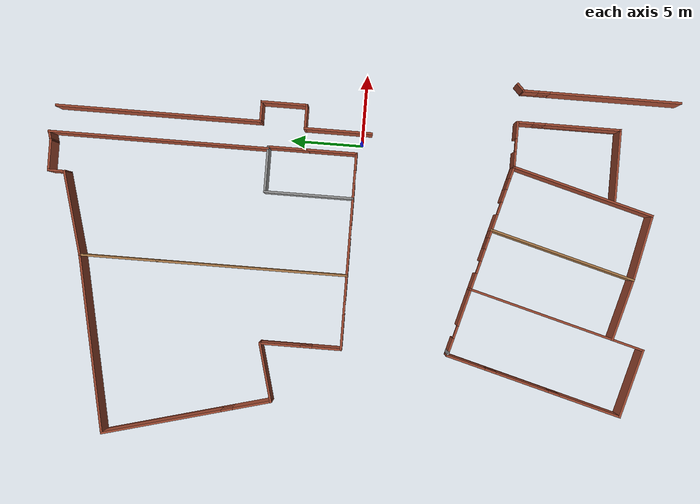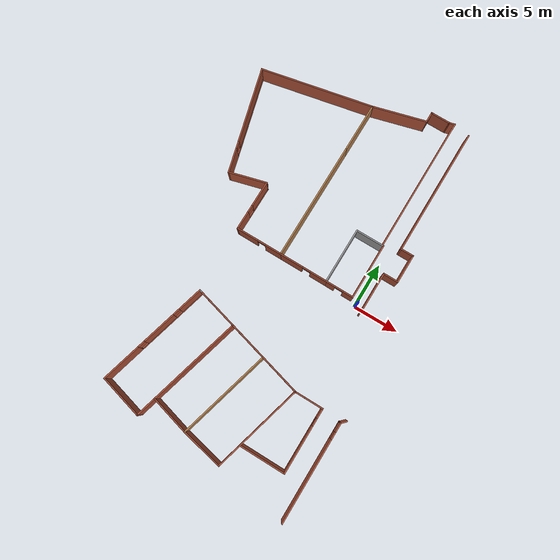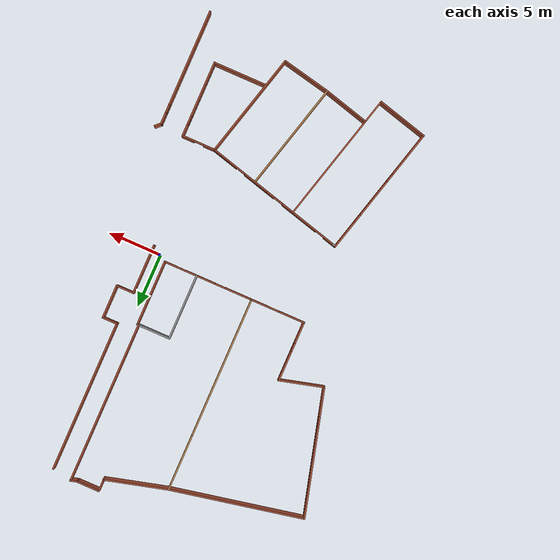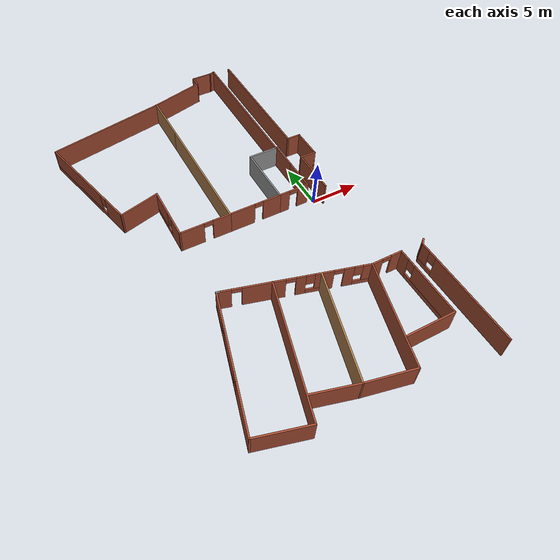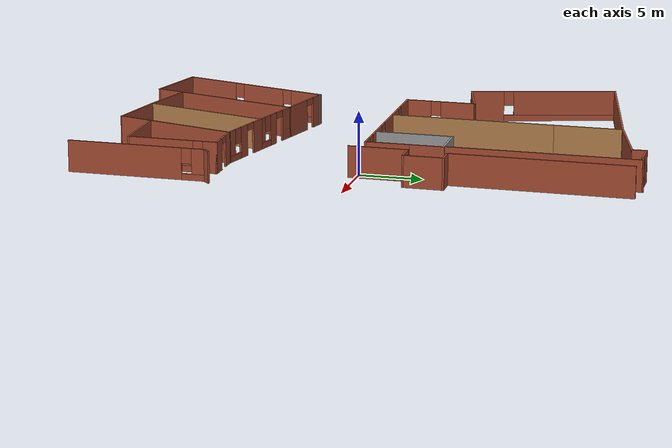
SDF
<sdf version="1.6">
 <model name="vital">
  <pose>12.2387 -3.95497 0 0 -0 0</pose>
  <link name="Wall_100">
   <collision name="Wall_100_Collision">
    <geometry><box><size>5 0.15 2.5</size></box></geometry>
    <pose>0 0 1.25 0 -0 0</pose>
   </collision>
   <visual name="Wall_100_Visual">
    <pose>0 0 1.25 0 -0 0</pose>
    <geometry><box><size>5 0.15 2.5</size></box></geometry>
    <material>
     <script><uri>file://media/materials/scripts/gazebo.material</uri><name>Gazebo/Bricks</name></script>
     <ambient>1 1 1 1</ambient>
    </material>
   </visual>
   <pose>-27.234 -15.8492 0 0 -0 2.87979</pose>
  </link>
  <link name="Wall_101">
   <pose>-27.9458 -9.13623 0 0 -0 1.309</pose>
   <visual name="Wall_101_Visual_0">
    <pose>-4.12668 0 1.25 0 -0 0</pose>
    <geometry><box><size>4.49665 0.15 2.5</size></box></geometry>
    <material>
     <script><uri>file://media/materials/scripts/gazebo.material</uri><name>Gazebo/Bricks</name></script>
     <ambient>1 1 1 1</ambient>
    </material>
   </visual>
   <collision name="Wall_101_Collision_0">
    <geometry><box><size>4.49665 0.15 2.5</size></box></geometry>
    <pose>-4.12668 0 1.25 0 -0 0</pose>
   </collision>
   <visual name="Wall_101_Visual_1">
    <pose>2.24832 0 0.25 0 -0 0</pose>
    <geometry><box><size>8.25336 0.15 0.5</size></box></geometry>
    <material>
     <script><uri>file://media/materials/scripts/gazebo.material</uri><name>Gazebo/Bricks</name></script>
     <ambient>1 1 1 1</ambient>
    </material>
   </visual>
   <collision name="Wall_101_Collision_1">
    <geometry><box><size>8.25336 0.15 0.5</size></box></geometry>
    <pose>2.24832 0 0.25 0 -0 0</pose>
   </collision>
   <visual name="Wall_101_Visual_2">
    <pose>0.830511 0 1.5 0 -0 0</pose>
    <geometry><box><size>3.81773 0.15 2</size></box></geometry>
    <material>
     <script><uri>file://media/materials/scripts/gazebo.material</uri><name>Gazebo/Bricks</name></script>
     <ambient>1 1 1 1</ambient>
    </material>
   </visual>
   <collision name="Wall_101_Collision_2">
    <geometry><box><size>3.81773 0.15 2</size></box></geometry>
    <pose>0.830511 0 1.5 0 -0 0</pose>
   </collision>
   <visual name="Wall_101_Visual_3">
    <pose>4.95719 0 1.5 0 -0 0</pose>
    <geometry><box><size>2.83562 0.15 2</size></box></geometry>
    <material>
     <script><uri>file://media/materials/scripts/gazebo.material</uri><name>Gazebo/Bricks</name></script>
     <ambient>1 1 1 1</ambient>
    </material>
   </visual>
   <collision name="Wall_101_Collision_3">
    <geometry><box><size>2.83562 0.15 2</size></box></geometry>
    <pose>4.95719 0 1.5 0 -0 0</pose>
   </collision>
   <visual name="Wall_101_Visual_4">
    <pose>-1.47836 0 1.9 0 -0 0</pose>
    <geometry><box><size>0.8 0.15 1.2</size></box></geometry>
    <material>
     <script><uri>file://media/materials/scripts/gazebo.material</uri><name>Gazebo/Bricks</name></script>
     <ambient>1 1 1 1</ambient>
    </material>
   </visual>
   <collision name="Wall_101_Collision_4">
    <geometry><box><size>0.8 0.15 1.2</size></box></geometry>
    <pose>-1.47836 0 1.9 0 -0 0</pose>
   </collision>
   <visual name="Wall_101_Visual_5">
    <pose>3.13938 0 1.9 0 -0 0</pose>
    <geometry><box><size>0.8 0.15 1.2</size></box></geometry>
    <material>
     <script><uri>file://media/materials/scripts/gazebo.material</uri><name>Gazebo/Bricks</name></script>
     <ambient>1 1 1 1</ambient>
    </material>
   </visual>
   <collision name="Wall_101_Collision_5">
    <geometry><box><size>0.8 0.15 1.2</size></box></geometry>
    <pose>3.13938 0 1.9 0 -0 0</pose>
   </collision>
  </link>
  <link name="Wall_102">
   <collision name="Wall_102_Collision">
    <geometry><box><size>0.4 0.15 2.5</size></box></geometry>
    <pose>0 0 1.25 0 -0 0</pose>
   </collision>
   <visual name="Wall_102_Visual">
    <pose>0 0 1.25 0 -0 0</pose>
    <geometry><box><size>0.4 0.15 2.5</size></box></geometry>
    <material>
     <script><uri>file://media/materials/scripts/gazebo.material</uri><name>Gazebo/Grey</name></script>
     <ambient>1 1 1 1</ambient>
    </material>
   </visual>
   <pose>-26.1945 -3.08325 0 0 0 -0.261799</pose>
  </link>
  <link name="Wall_104">
   <pose>-19.5297 -4.8691 0 0 0 -0.261799</pose>
   <visual name="Wall_104_Visual_0">
    <pose>-1.62247 0 1.25 0 -0 0</pose>
    <geometry><box><size>1.25506 0.15 2.5</size></box></geometry>
    <material>
     <script><uri>file://media/materials/scripts/gazebo.material</uri><name>Gazebo/Bricks</name></script>
     <ambient>1 1 1 1</ambient>
    </material>
   </visual>
   <collision name="Wall_104_Collision_0">
    <geometry><box><size>1.25506 0.15 2.5</size></box></geometry>
    <pose>-1.62247 0 1.25 0 -0 0</pose>
   </collision>
   <visual name="Wall_104_Visual_1">
    <pose>0.350281 0 1.25 0 -0 0</pose>
    <geometry><box><size>0.890442 0.15 2.5</size></box></geometry>
    <material>
     <script><uri>file://media/materials/scripts/gazebo.material</uri><name>Gazebo/Bricks</name></script>
     <ambient>1 1 1 1</ambient>
    </material>
   </visual>
   <collision name="Wall_104_Collision_1">
    <geometry><box><size>0.890442 0.15 2.5</size></box></geometry>
    <pose>0.350281 0 1.25 0 -0 0</pose>
   </collision>
   <visual name="Wall_104_Visual_2">
    <pose>1.52275 0 0.25 0 -0 0</pose>
    <geometry><box><size>1.4545 0.15 0.5</size></box></geometry>
    <material>
     <script><uri>file://media/materials/scripts/gazebo.material</uri><name>Gazebo/Bricks</name></script>
     <ambient>1 1 1 1</ambient>
    </material>
   </visual>
   <collision name="Wall_104_Collision_2">
    <geometry><box><size>1.4545 0.15 0.5</size></box></geometry>
    <pose>1.52275 0 0.25 0 -0 0</pose>
   </collision>
   <visual name="Wall_104_Visual_3">
    <pose>1.92275 0 1.5 0 -0 0</pose>
    <geometry><box><size>0.654498 0.15 2</size></box></geometry>
    <material>
     <script><uri>file://media/materials/scripts/gazebo.material</uri><name>Gazebo/Bricks</name></script>
     <ambient>1 1 1 1</ambient>
    </material>
   </visual>
   <collision name="Wall_104_Collision_3">
    <geometry><box><size>0.654498 0.15 2</size></box></geometry>
    <pose>1.92275 0 1.5 0 -0 0</pose>
   </collision>
   <visual name="Wall_104_Visual_4">
    <pose>1.1955 0 1.9 0 -0 0</pose>
    <geometry><box><size>0.8 0.15 1.2</size></box></geometry>
    <material>
     <script><uri>file://media/materials/scripts/gazebo.material</uri><name>Gazebo/Bricks</name></script>
     <ambient>1 1 1 1</ambient>
    </material>
   </visual>
   <collision name="Wall_104_Collision_4">
    <geometry><box><size>0.8 0.15 1.2</size></box></geometry>
    <pose>1.1955 0 1.9 0 -0 0</pose>
   </collision>
   <visual name="Wall_104_Visual_5">
    <pose>-0.54494 0 2.25 0 -0 0</pose>
    <geometry><box><size>0.9 0.15 0.5</size></box></geometry>
    <material>
     <script><uri>file://media/materials/scripts/gazebo.material</uri><name>Gazebo/Bricks</name></script>
     <ambient>1 1 1 1</ambient>
    </material>
   </visual>
   <collision name="Wall_104_Collision_5">
    <geometry><box><size>0.9 0.15 0.5</size></box></geometry>
    <pose>-0.54494 0 2.25 0 -0 0</pose>
   </collision>
  </link>
  <link name="Wall_105">
   <collision name="Wall_105_Collision">
    <geometry><box><size>10.5 0.15 2.5</size></box></geometry>
    <pose>0 0 1.25 0 -0 0</pose>
   </collision>
   <visual name="Wall_105_Visual">
    <pose>0 0 1.25 0 -0 0</pose>
    <geometry><box><size>10.5 0.15 2.5</size></box></geometry>
    <material>
     <script><uri>file://media/materials/scripts/gazebo.material</uri><name>Gazebo/Wood</name></script>
     <ambient>1 1 1 1</ambient>
    </material>
   </visual>
   <pose>-18.7682 -10.4307 0 0 0 -1.8326</pose>
  </link>
  <link name="Wall_106">
   <collision name="Wall_106_Collision">
    <geometry><box><size>4.5 0.15 2.5</size></box></geometry>
    <pose>0 0 1.25 0 -0 0</pose>
   </collision>
   <visual name="Wall_106_Visual">
    <pose>0 0 1.25 0 -0 0</pose>
    <geometry><box><size>4.5 0.15 2.5</size></box></geometry>
    <material>
     <script><uri>file://media/materials/scripts/gazebo.material</uri><name>Gazebo/Bricks</name></script>
     <ambient>1 1 1 1</ambient>
    </material>
   </visual>
   <pose>-22.2084 -14.8664 0 0 -0 2.87979</pose>
  </link>
  <link name="Wall_108">
   <pose>-15.2071 -6.02732 0 0 0 -0.261799</pose>
   <visual name="Wall_108_Visual_0">
    <pose>-1.7708 0 1.25 0 -0 0</pose>
    <geometry><box><size>1.2084 0.15 2.5</size></box></geometry>
    <material>
     <script><uri>file://media/materials/scripts/gazebo.material</uri><name>Gazebo/Bricks</name></script>
     <ambient>1 1 1 1</ambient>
    </material>
   </visual>
   <collision name="Wall_108_Collision_0">
    <geometry><box><size>1.2084 0.15 2.5</size></box></geometry>
    <pose>-1.7708 0 1.25 0 -0 0</pose>
   </collision>
   <visual name="Wall_108_Visual_1">
    <pose>0.199682 0 1.25 0 -0 0</pose>
    <geometry><box><size>0.932562 0.15 2.5</size></box></geometry>
    <material>
     <script><uri>file://media/materials/scripts/gazebo.material</uri><name>Gazebo/Bricks</name></script>
     <ambient>1 1 1 1</ambient>
    </material>
   </visual>
   <collision name="Wall_108_Collision_1">
    <geometry><box><size>0.932562 0.15 2.5</size></box></geometry>
    <pose>0.199682 0 1.25 0 -0 0</pose>
   </collision>
   <visual name="Wall_108_Visual_2">
    <pose>1.52048 0 0.25 0 -0 0</pose>
    <geometry><box><size>1.70904 0.15 0.5</size></box></geometry>
    <material>
     <script><uri>file://media/materials/scripts/gazebo.material</uri><name>Gazebo/Bricks</name></script>
     <ambient>1 1 1 1</ambient>
    </material>
   </visual>
   <collision name="Wall_108_Collision_2">
    <geometry><box><size>1.70904 0.15 0.5</size></box></geometry>
    <pose>1.52048 0 0.25 0 -0 0</pose>
   </collision>
   <visual name="Wall_108_Visual_3">
    <pose>1.92048 0 1.5 0 -0 0</pose>
    <geometry><box><size>0.909036 0.15 2</size></box></geometry>
    <material>
     <script><uri>file://media/materials/scripts/gazebo.material</uri><name>Gazebo/Bricks</name></script>
     <ambient>1 1 1 1</ambient>
    </material>
   </visual>
   <collision name="Wall_108_Collision_3">
    <geometry><box><size>0.909036 0.15 2</size></box></geometry>
    <pose>1.92048 0 1.5 0 -0 0</pose>
   </collision>
   <visual name="Wall_108_Visual_4">
    <pose>1.06596 0 1.9 0 -0 0</pose>
    <geometry><box><size>0.8 0.15 1.2</size></box></geometry>
    <material>
     <script><uri>file://media/materials/scripts/gazebo.material</uri><name>Gazebo/Bricks</name></script>
     <ambient>1 1 1 1</ambient>
    </material>
   </visual>
   <collision name="Wall_108_Collision_4">
    <geometry><box><size>0.8 0.15 1.2</size></box></geometry>
    <pose>1.06596 0 1.9 0 -0 0</pose>
   </collision>
   <visual name="Wall_108_Visual_5">
    <pose>-0.716599 0 2.25 0 -0 0</pose>
    <geometry><box><size>0.9 0.15 0.5</size></box></geometry>
    <material>
     <script><uri>file://media/materials/scripts/gazebo.material</uri><name>Gazebo/Bricks</name></script>
     <ambient>1 1 1 1</ambient>
    </material>
   </visual>
   <collision name="Wall_108_Collision_5">
    <geometry><box><size>0.9 0.15 0.5</size></box></geometry>
    <pose>-0.716599 0 2.25 0 -0 0</pose>
   </collision>
  </link>
  <link name="Wall_109">
   <collision name="Wall_109_Collision">
    <geometry><box><size>10.25 0.15 2.5</size></box></geometry>
    <pose>0 0 1.25 0 -0 0</pose>
   </collision>
   <visual name="Wall_109_Visual">
    <pose>0 0 1.25 0 -0 0</pose>
    <geometry><box><size>10.25 0.15 2.5</size></box></geometry>
    <material>
     <script><uri>file://media/materials/scripts/gazebo.material</uri><name>Gazebo/Bricks</name></script>
     <ambient>1 1 1 1</ambient>
    </material>
   </visual>
   <pose>-14.2925 -11.5005 0 0 0 -1.8326</pose>
  </link>
  <link name="Wall_110">
   <collision name="Wall_110_Collision">
    <geometry><box><size>4.75679 0.15 2.5</size></box></geometry>
    <pose>0 0 1.25 0 -0 0</pose>
   </collision>
   <visual name="Wall_110_Visual">
    <pose>0 0 1.25 0 -0 0</pose>
    <geometry><box><size>4.75679 0.15 2.5</size></box></geometry>
    <material>
     <script><uri>file://media/materials/scripts/gazebo.material</uri><name>Gazebo/Bricks</name></script>
     <ambient>1 1 1 1</ambient>
    </material>
   </visual>
   <pose>-17.8536 -15.9039 0 0 -0 2.93409</pose>
  </link>
  <link name="Wall_112">
   <pose>-11.4355 -6.6226 0 0 -0 0</pose>
   <visual name="Wall_112_Visual_0">
    <pose>-1.04973 0 1.25 0 -0 0</pose>
    <geometry><box><size>1.15054 0.15 2.5</size></box></geometry>
    <material>
     <script><uri>file://media/materials/scripts/gazebo.material</uri><name>Gazebo/Bricks</name></script>
     <ambient>1 1 1 1</ambient>
    </material>
   </visual>
   <collision name="Wall_112_Collision_0">
    <geometry><box><size>1.15054 0.15 2.5</size></box></geometry>
    <pose>-1.04973 0 1.25 0 -0 0</pose>
   </collision>
   <visual name="Wall_112_Visual_1">
    <pose>1.02527 0 1.25 0 -0 0</pose>
    <geometry><box><size>1.19946 0.15 2.5</size></box></geometry>
    <material>
     <script><uri>file://media/materials/scripts/gazebo.material</uri><name>Gazebo/Bricks</name></script>
     <ambient>1 1 1 1</ambient>
    </material>
   </visual>
   <collision name="Wall_112_Collision_1">
    <geometry><box><size>1.19946 0.15 2.5</size></box></geometry>
    <pose>1.02527 0 1.25 0 -0 0</pose>
   </collision>
   <visual name="Wall_112_Visual_2">
    <pose>-0.024462 0 2.25 0 -0 0</pose>
    <geometry><box><size>0.9 0.15 0.5</size></box></geometry>
    <material>
     <script><uri>file://media/materials/scripts/gazebo.material</uri><name>Gazebo/Bricks</name></script>
     <ambient>1 1 1 1</ambient>
    </material>
   </visual>
   <collision name="Wall_112_Collision_2">
    <geometry><box><size>0.9 0.15 0.5</size></box></geometry>
    <pose>-0.024462 0 2.25 0 -0 0</pose>
   </collision>
  </link>
  <link name="Wall_113">
   <pose>-9.88551 -10.1726 0 0 0 -1.5708</pose>
   <visual name="Wall_113_Visual_0">
    <pose>-3.04191 0 1.25 0 -0 0</pose>
    <geometry><box><size>1.16617 0.15 2.5</size></box></geometry>
    <material>
     <script><uri>file://media/materials/scripts/gazebo.material</uri><name>Gazebo/Bricks</name></script>
     <ambient>1 1 1 1</ambient>
    </material>
   </visual>
   <collision name="Wall_113_Collision_0">
    <geometry><box><size>1.16617 0.15 2.5</size></box></geometry>
    <pose>-3.04191 0 1.25 0 -0 0</pose>
   </collision>
   <visual name="Wall_113_Visual_1">
    <pose>0.583086 0 0.25 0 -0 0</pose>
    <geometry><box><size>6.08383 0.15 0.5</size></box></geometry>
    <material>
     <script><uri>file://media/materials/scripts/gazebo.material</uri><name>Gazebo/Bricks</name></script>
     <ambient>1 1 1 1</ambient>
    </material>
   </visual>
   <collision name="Wall_113_Collision_1">
    <geometry><box><size>6.08383 0.15 0.5</size></box></geometry>
    <pose>0.583086 0 0.25 0 -0 0</pose>
   </collision>
   <visual name="Wall_113_Visual_2">
    <pose>0.983086 0 1.5 0 -0 0</pose>
    <geometry><box><size>5.28383 0.15 2</size></box></geometry>
    <material>
     <script><uri>file://media/materials/scripts/gazebo.material</uri><name>Gazebo/Bricks</name></script>
     <ambient>1 1 1 1</ambient>
    </material>
   </visual>
   <collision name="Wall_113_Collision_2">
    <geometry><box><size>5.28383 0.15 2</size></box></geometry>
    <pose>0.983086 0 1.5 0 -0 0</pose>
   </collision>
   <visual name="Wall_113_Visual_3">
    <pose>-2.05883 0 1.9 0 -0 0</pose>
    <geometry><box><size>0.8 0.15 1.2</size></box></geometry>
    <material>
     <script><uri>file://media/materials/scripts/gazebo.material</uri><name>Gazebo/Bricks</name></script>
     <ambient>1 1 1 1</ambient>
    </material>
   </visual>
   <collision name="Wall_113_Collision_3">
    <geometry><box><size>0.8 0.15 1.2</size></box></geometry>
    <pose>-2.05883 0 1.9 0 -0 0</pose>
   </collision>
  </link>
  <link name="Wall_114">
   <collision name="Wall_114_Collision">
    <geometry><box><size>5 0.15 2.5</size></box></geometry>
    <pose>0 0 1.25 0 -0 0</pose>
   </collision>
   <visual name="Wall_114_Visual">
    <pose>0 0 1.25 0 -0 0</pose>
    <geometry><box><size>5 0.15 2.5</size></box></geometry>
    <material>
     <script><uri>file://media/materials/scripts/gazebo.material</uri><name>Gazebo/Bricks</name></script>
     <ambient>1 1 1 1</ambient>
    </material>
   </visual>
   <pose>-12.3105 -13.7226 0 0 -0 3.14159</pose>
  </link>
  <link name="Wall_119">
   <pose>-7.69351 -12.2813 0 0 -0 1.5708</pose>
   <visual name="Wall_119_Visual_0">
    <pose>-0.947604 0 1.25 0 -0 0</pose>
    <geometry><box><size>9.10479 0.15 2.5</size></box></geometry>
    <material>
     <script><uri>file://media/materials/scripts/gazebo.material</uri><name>Gazebo/Bricks</name></script>
     <ambient>1 1 1 1</ambient>
    </material>
   </visual>
   <collision name="Wall_119_Collision_0">
    <geometry><box><size>9.10479 0.15 2.5</size></box></geometry>
    <pose>-0.947604 0 1.25 0 -0 0</pose>
   </collision>
   <visual name="Wall_119_Visual_1">
    <pose>4.5524 0 0.25 0 -0 0</pose>
    <geometry><box><size>1.89521 0.15 0.5</size></box></geometry>
    <material>
     <script><uri>file://media/materials/scripts/gazebo.material</uri><name>Gazebo/Bricks</name></script>
     <ambient>1 1 1 1</ambient>
    </material>
   </visual>
   <collision name="Wall_119_Collision_1">
    <geometry><box><size>1.89521 0.15 0.5</size></box></geometry>
    <pose>4.5524 0 0.25 0 -0 0</pose>
   </collision>
   <visual name="Wall_119_Visual_2">
    <pose>4.9524 0 1.5 0 -0 0</pose>
    <geometry><box><size>1.09521 0.15 2</size></box></geometry>
    <material>
     <script><uri>file://media/materials/scripts/gazebo.material</uri><name>Gazebo/Bricks</name></script>
     <ambient>1 1 1 1</ambient>
    </material>
   </visual>
   <collision name="Wall_119_Collision_2">
    <geometry><box><size>1.09521 0.15 2</size></box></geometry>
    <pose>4.9524 0 1.5 0 -0 0</pose>
   </collision>
   <visual name="Wall_119_Visual_3">
    <pose>4.00479 0 1.9 0 -0 0</pose>
    <geometry><box><size>0.8 0.15 1.2</size></box></geometry>
    <material>
     <script><uri>file://media/materials/scripts/gazebo.material</uri><name>Gazebo/Bricks</name></script>
     <ambient>1 1 1 1</ambient>
    </material>
   </visual>
   <collision name="Wall_119_Collision_3">
    <geometry><box><size>0.8 0.15 1.2</size></box></geometry>
    <pose>4.00479 0 1.9 0 -0 0</pose>
   </collision>
  </link>
  <link name="Wall_120">
   <collision name="Wall_120_Collision">
    <geometry><box><size>0.75 0.15 2.5</size></box></geometry>
    <pose>0 0 1.25 0 -0 0</pose>
   </collision>
   <visual name="Wall_120_Visual">
    <pose>0 0 1.25 0 -0 0</pose>
    <geometry><box><size>0.75 0.15 2.5</size></box></geometry>
    <material>
     <script><uri>file://media/materials/scripts/gazebo.material</uri><name>Gazebo/Bricks</name></script>
     <ambient>1 1 1 1</ambient>
    </material>
   </visual>
   <pose>-7.48138 -6.64417 0 0 -0 0.785398</pose>
  </link>
  <link name="Wall_25">
   <collision name="Wall_25_Collision">
    <geometry><box><size>3.5 0.15 2.5</size></box></geometry>
    <pose>0 0 1.25 0 -0 0</pose>
   </collision>
   <visual name="Wall_25_Visual">
    <pose>0 0 1.25 0 -0 0</pose>
    <geometry><box><size>3.5 0.15 2.5</size></box></geometry>
    <material>
     <script><uri>file://media/materials/scripts/gazebo.material</uri><name>Gazebo/Bricks</name></script>
     <ambient>1 1 1 1</ambient>
    </material>
   </visual>
   <pose>-12.9307 5.97359 0 0 0 -1.5708</pose>
  </link>
  <link name="Wall_26">
   <pose>-14.4807 4.29859 0 0 -0 3.14159</pose>
   <visual name="Wall_26_Visual_0">
    <pose>-1.02242 0 1.25 0 -0 0</pose>
    <geometry><box><size>1.20517 0.15 2.5</size></box></geometry>
    <material>
     <script><uri>file://media/materials/scripts/gazebo.material</uri><name>Gazebo/Bricks</name></script>
     <ambient>1 1 1 1</ambient>
    </material>
   </visual>
   <collision name="Wall_26_Collision_0">
    <geometry><box><size>1.20517 0.15 2.5</size></box></geometry>
    <pose>-1.02242 0 1.25 0 -0 0</pose>
   </collision>
   <visual name="Wall_26_Visual_1">
    <pose>1.05258 0 1.25 0 -0 0</pose>
    <geometry><box><size>1.14483 0.15 2.5</size></box></geometry>
    <material>
     <script><uri>file://media/materials/scripts/gazebo.material</uri><name>Gazebo/Bricks</name></script>
     <ambient>1 1 1 1</ambient>
    </material>
   </visual>
   <collision name="Wall_26_Collision_1">
    <geometry><box><size>1.14483 0.15 2.5</size></box></geometry>
    <pose>1.05258 0 1.25 0 -0 0</pose>
   </collision>
   <visual name="Wall_26_Visual_2">
    <pose>0.030167 0 2.25 0 -0 0</pose>
    <geometry><box><size>0.9 0.15 0.5</size></box></geometry>
    <material>
     <script><uri>file://media/materials/scripts/gazebo.material</uri><name>Gazebo/Bricks</name></script>
     <ambient>1 1 1 1</ambient>
    </material>
   </visual>
   <collision name="Wall_26_Collision_2">
    <geometry><box><size>0.9 0.15 0.5</size></box></geometry>
    <pose>0.030167 0 2.25 0 -0 0</pose>
   </collision>
  </link>
  <link name="Wall_27">
   <collision name="Wall_27_Collision">
    <geometry><box><size>6.25 0.15 2.5</size></box></geometry>
    <pose>0 0 1.25 0 -0 0</pose>
   </collision>
   <visual name="Wall_27_Visual">
    <pose>0 0 1.25 0 -0 0</pose>
    <geometry><box><size>6.25 0.15 2.5</size></box></geometry>
    <material>
     <script><uri>file://media/materials/scripts/gazebo.material</uri><name>Gazebo/Grey</name></script>
     <ambient>1 1 1 1</ambient>
    </material>
   </visual>
   <pose>-16.0307 7.34859 0 0 -0 1.5708</pose>
  </link>
  <link name="Wall_28">
   <collision name="Wall_28_Collision">
    <geometry><box><size>3.25 0.15 2.5</size></box></geometry>
    <pose>0 0 1.25 0 -0 0</pose>
   </collision>
   <visual name="Wall_28_Visual">
    <pose>0 0 1.25 0 -0 0</pose>
    <geometry><box><size>3.25 0.15 2.5</size></box></geometry>
    <material>
     <script><uri>file://media/materials/scripts/gazebo.material</uri><name>Gazebo/Grey</name></script>
     <ambient>1 1 1 1</ambient>
    </material>
   </visual>
   <pose>-14.4807 10.3986 0 0 -0 0</pose>
  </link>
  <link name="Wall_29">
   <collision name="Wall_29_Collision">
    <geometry><box><size>2.9 0.15 2.5</size></box></geometry>
    <pose>0 0 1.25 0 -0 0</pose>
   </collision>
   <visual name="Wall_29_Visual">
    <pose>0 0 1.25 0 -0 0</pose>
    <geometry><box><size>2.9 0.15 2.5</size></box></geometry>
    <material>
     <script><uri>file://media/materials/scripts/gazebo.material</uri><name>Gazebo/Bricks</name></script>
     <ambient>1 1 1 1</ambient>
    </material>
   </visual>
   <pose>-12.9307 9.02359 0 0 0 -1.5708</pose>
  </link>
  <link name="Wall_31">
   <pose>-18.7057 4.29859 0 0 -0 3.14159</pose>
   <visual name="Wall_31_Visual_0">
    <pose>-1.79005 0 1.25 0 -0 0</pose>
    <geometry><box><size>1.91989 0.15 2.5</size></box></geometry>
    <material>
     <script><uri>file://media/materials/scripts/gazebo.material</uri><name>Gazebo/Bricks</name></script>
     <ambient>1 1 1 1</ambient>
    </material>
   </visual>
   <collision name="Wall_31_Collision_0">
    <geometry><box><size>1.91989 0.15 2.5</size></box></geometry>
    <pose>-1.79005 0 1.25 0 -0 0</pose>
   </collision>
   <visual name="Wall_31_Visual_1">
    <pose>1.40995 0 1.25 0 -0 0</pose>
    <geometry><box><size>2.68011 0.15 2.5</size></box></geometry>
    <material>
     <script><uri>file://media/materials/scripts/gazebo.material</uri><name>Gazebo/Bricks</name></script>
     <ambient>1 1 1 1</ambient>
    </material>
   </visual>
   <collision name="Wall_31_Collision_1">
    <geometry><box><size>2.68011 0.15 2.5</size></box></geometry>
    <pose>1.40995 0 1.25 0 -0 0</pose>
   </collision>
   <visual name="Wall_31_Visual_2">
    <pose>-0.380105 0 2.25 0 -0 0</pose>
    <geometry><box><size>0.9 0.15 0.5</size></box></geometry>
    <material>
     <script><uri>file://media/materials/scripts/gazebo.material</uri><name>Gazebo/Bricks</name></script>
     <ambient>1 1 1 1</ambient>
    </material>
   </visual>
   <collision name="Wall_31_Collision_2">
    <geometry><box><size>0.9 0.15 0.5</size></box></geometry>
    <pose>-0.380105 0 2.25 0 -0 0</pose>
   </collision>
  </link>
  <link name="Wall_32">
   <collision name="Wall_32_Collision">
    <geometry><box><size>13.25 0.15 2.5</size></box></geometry>
    <pose>0 0 1.25 0 -0 0</pose>
   </collision>
   <visual name="Wall_32_Visual">
    <pose>0 0 1.25 0 -0 0</pose>
    <geometry><box><size>13.25 0.15 2.5</size></box></geometry>
    <material>
     <script><uri>file://media/materials/scripts/gazebo.material</uri><name>Gazebo/Wood</name></script>
     <ambient>1 1 1 1</ambient>
    </material>
   </visual>
   <pose>-21.3807 10.8486 0 0 -0 1.5708</pose>
  </link>
  <link name="Wall_34">
   <collision name="Wall_34_Collision">
    <geometry><box><size>5.5 0.15 2.5</size></box></geometry>
    <pose>0 0 1.25 0 -0 0</pose>
   </collision>
   <visual name="Wall_34_Visual">
    <pose>0 0 1.25 0 -0 0</pose>
    <geometry><box><size>5.5 0.15 2.5</size></box></geometry>
    <material>
     <script><uri>file://media/materials/scripts/gazebo.material</uri><name>Gazebo/Wood</name></script>
     <ambient>1 1 1 1</ambient>
    </material>
   </visual>
   <pose>-21.3807 20.0736 0 0 -0 1.5708</pose>
  </link>
  <link name="Wall_35">
   <collision name="Wall_35_Collision">
    <geometry><box><size>6 0.15 2.5</size></box></geometry>
    <pose>0 0 1.25 0 -0 0</pose>
   </collision>
   <visual name="Wall_35_Visual">
    <pose>0 0 1.25 0 -0 0</pose>
    <geometry><box><size>6 0.15 2.5</size></box></geometry>
    <material>
     <script><uri>file://media/materials/scripts/gazebo.material</uri><name>Gazebo/Bricks</name></script>
     <ambient>1 1 1 1</ambient>
    </material>
   </visual>
   <pose>-18.5554 23.5056 0 0 -0 0.261799</pose>
  </link>
  <link name="Wall_36">
   <collision name="Wall_36_Collision">
    <geometry><box><size>1.25 0.15 2.5</size></box></geometry>
    <pose>0 0 1.25 0 -0 0</pose>
   </collision>
   <visual name="Wall_36_Visual">
    <pose>0 0 1.25 0 -0 0</pose>
    <geometry><box><size>1.25 0.15 2.5</size></box></geometry>
    <material>
     <script><uri>file://media/materials/scripts/gazebo.material</uri><name>Gazebo/Bricks</name></script>
     <ambient>1 1 1 1</ambient>
    </material>
   </visual>
   <pose>-15.73 24.8127 0 0 -0 1.5708</pose>
  </link>
  <link name="Wall_37">
   <collision name="Wall_37_Collision">
    <geometry><box><size>2.25 0.15 2.5</size></box></geometry>
    <pose>0 0 1.25 0 -0 0</pose>
   </collision>
   <visual name="Wall_37_Visual">
    <pose>0 0 1.25 0 -0 0</pose>
    <geometry><box><size>2.25 0.15 2.5</size></box></geometry>
    <material>
     <script><uri>file://media/materials/scripts/gazebo.material</uri><name>Gazebo/Bricks</name></script>
     <ambient>1 1 1 1</ambient>
    </material>
   </visual>
   <pose>-14.68 25.3627 0 0 -0 0</pose>
  </link>
  <link name="Wall_38">
   <collision name="Wall_38_Collision">
    <geometry><box><size>0.75 0.15 2.5</size></box></geometry>
    <pose>0 0 1.25 0 -0 0</pose>
   </collision>
   <visual name="Wall_38_Visual">
    <pose>0 0 1.25 0 -0 0</pose>
    <geometry><box><size>0.75 0.15 2.5</size></box></geometry>
    <material>
     <script><uri>file://media/materials/scripts/gazebo.material</uri><name>Gazebo/Bricks</name></script>
     <ambient>1 1 1 1</ambient>
    </material>
   </visual>
   <pose>-13.3403 25.4403 0 0 -0 0.261799</pose>
  </link>
  <link name="Wall_39">
   <collision name="Wall_39_Collision">
    <geometry><box><size>15.25 0.15 2.5</size></box></geometry>
    <pose>0 0 1.25 0 -0 0</pose>
   </collision>
   <visual name="Wall_39_Visual">
    <pose>0 0 1.25 0 -0 0</pose>
    <geometry><box><size>15.25 0.15 2.5</size></box></geometry>
    <material>
     <script><uri>file://media/materials/scripts/gazebo.material</uri><name>Gazebo/Bricks</name></script>
     <ambient>1 1 1 1</ambient>
    </material>
   </visual>
   <pose>-13.0505 17.968 0 0 0 -1.5708</pose>
  </link>
  <link name="Wall_43">
   <pose>-23.9307 4.29859 0 0 -0 3.14159</pose>
   <visual name="Wall_43_Visual_0">
    <pose>-1.69435 0 1.25 0 -0 0</pose>
    <geometry><box><size>1.86129 0.15 2.5</size></box></geometry>
    <material>
     <script><uri>file://media/materials/scripts/gazebo.material</uri><name>Gazebo/Bricks</name></script>
     <ambient>1 1 1 1</ambient>
    </material>
   </visual>
   <collision name="Wall_43_Collision_0">
    <geometry><box><size>1.86129 0.15 2.5</size></box></geometry>
    <pose>-1.69435 0 1.25 0 -0 0</pose>
   </collision>
   <visual name="Wall_43_Visual_1">
    <pose>1.38065 0 1.25 0 -0 0</pose>
    <geometry><box><size>2.48871 0.15 2.5</size></box></geometry>
    <material>
     <script><uri>file://media/materials/scripts/gazebo.material</uri><name>Gazebo/Bricks</name></script>
     <ambient>1 1 1 1</ambient>
    </material>
   </visual>
   <collision name="Wall_43_Collision_1">
    <geometry><box><size>2.48871 0.15 2.5</size></box></geometry>
    <pose>1.38065 0 1.25 0 -0 0</pose>
   </collision>
   <visual name="Wall_43_Visual_2">
    <pose>-0.313707 0 2.25 0 -0 0</pose>
    <geometry><box><size>0.9 0.15 0.5</size></box></geometry>
    <material>
     <script><uri>file://media/materials/scripts/gazebo.material</uri><name>Gazebo/Bricks</name></script>
     <ambient>1 1 1 1</ambient>
    </material>
   </visual>
   <collision name="Wall_43_Collision_2">
    <geometry><box><size>0.9 0.15 0.5</size></box></geometry>
    <pose>-0.313707 0 2.25 0 -0 0</pose>
   </collision>
  </link>
  <link name="Wall_44">
   <pose>-26.4807 7.09859 0 0 -0 1.5708</pose>
   <visual name="Wall_44_Visual_0">
    <pose>-1.83896 0 1.25 0 -0 0</pose>
    <geometry><box><size>2.07209 0.15 2.5</size></box></geometry>
    <material>
     <script><uri>file://media/materials/scripts/gazebo.material</uri><name>Gazebo/Bricks</name></script>
     <ambient>1 1 1 1</ambient>
    </material>
   </visual>
   <collision name="Wall_44_Collision_0">
    <geometry><box><size>2.07209 0.15 2.5</size></box></geometry>
    <pose>-1.83896 0 1.25 0 -0 0</pose>
   </collision>
   <visual name="Wall_44_Visual_1">
    <pose>1.03604 0 0.25 0 -0 0</pose>
    <geometry><box><size>3.67791 0.15 0.5</size></box></geometry>
    <material>
     <script><uri>file://media/materials/scripts/gazebo.material</uri><name>Gazebo/Bricks</name></script>
     <ambient>1 1 1 1</ambient>
    </material>
   </visual>
   <collision name="Wall_44_Collision_1">
    <geometry><box><size>3.67791 0.15 0.5</size></box></geometry>
    <pose>1.03604 0 0.25 0 -0 0</pose>
   </collision>
   <visual name="Wall_44_Visual_2">
    <pose>1.43604 0 1.5 0 -0 0</pose>
    <geometry><box><size>2.87791 0.15 2</size></box></geometry>
    <material>
     <script><uri>file://media/materials/scripts/gazebo.material</uri><name>Gazebo/Bricks</name></script>
     <ambient>1 1 1 1</ambient>
    </material>
   </visual>
   <collision name="Wall_44_Collision_2">
    <geometry><box><size>2.87791 0.15 2</size></box></geometry>
    <pose>1.43604 0 1.5 0 -0 0</pose>
   </collision>
   <visual name="Wall_44_Visual_3">
    <pose>-0.402914 0 1.9 0 -0 0</pose>
    <geometry><box><size>0.8 0.15 1.2</size></box></geometry>
    <material>
     <script><uri>file://media/materials/scripts/gazebo.material</uri><name>Gazebo/Bricks</name></script>
     <ambient>1 1 1 1</ambient>
    </material>
   </visual>
   <collision name="Wall_44_Collision_3">
    <geometry><box><size>0.8 0.15 1.2</size></box></geometry>
    <pose>-0.402914 0 1.9 0 -0 0</pose>
   </collision>
  </link>
  <link name="Wall_45">
   <collision name="Wall_45_Collision">
    <geometry><box><size>4.25 0.15 2.5</size></box></geometry>
    <pose>0 0 1.25 0 -0 0</pose>
   </collision>
   <visual name="Wall_45_Visual">
    <pose>0 0 1.25 0 -0 0</pose>
    <geometry><box><size>4.25 0.15 2.5</size></box></geometry>
    <material>
     <script><uri>file://media/materials/scripts/gazebo.material</uri><name>Gazebo/Bricks</name></script>
     <ambient>1 1 1 1</ambient>
    </material>
   </visual>
   <pose>-28.4609 9.36801 0 0 0 -2.87979</pose>
  </link>
  <link name="Wall_46">
   <pose>-31.9745 14.5605 0 0 -0 1.8326</pose>
   <visual name="Wall_46_Visual_0">
    <pose>-4.62909 0 1.25 0 -0 0</pose>
    <geometry><box><size>2.74183 0.15 2.5</size></box></geometry>
    <material>
     <script><uri>file://media/materials/scripts/gazebo.material</uri><name>Gazebo/Bricks</name></script>
     <ambient>1 1 1 1</ambient>
    </material>
   </visual>
   <collision name="Wall_46_Collision_0">
    <geometry><box><size>2.74183 0.15 2.5</size></box></geometry>
    <pose>-4.62909 0 1.25 0 -0 0</pose>
   </collision>
   <visual name="Wall_46_Visual_1">
    <pose>1.37091 0 0.25 0 -0 0</pose>
    <geometry><box><size>9.25817 0.15 0.5</size></box></geometry>
    <material>
     <script><uri>file://media/materials/scripts/gazebo.material</uri><name>Gazebo/Bricks</name></script>
     <ambient>1 1 1 1</ambient>
    </material>
   </visual>
   <collision name="Wall_46_Collision_1">
    <geometry><box><size>9.25817 0.15 0.5</size></box></geometry>
    <pose>1.37091 0 0.25 0 -0 0</pose>
   </collision>
   <visual name="Wall_46_Visual_2">
    <pose>1.77091 0 1.5 0 -0 0</pose>
    <geometry><box><size>8.45817 0.15 2</size></box></geometry>
    <material>
     <script><uri>file://media/materials/scripts/gazebo.material</uri><name>Gazebo/Bricks</name></script>
     <ambient>1 1 1 1</ambient>
    </material>
   </visual>
   <collision name="Wall_46_Collision_2">
    <geometry><box><size>8.45817 0.15 2</size></box></geometry>
    <pose>1.77091 0 1.5 0 -0 0</pose>
   </collision>
   <visual name="Wall_46_Visual_3">
    <pose>-2.85817 0 1.9 0 -0 0</pose>
    <geometry><box><size>0.8 0.15 1.2</size></box></geometry>
    <material>
     <script><uri>file://media/materials/scripts/gazebo.material</uri><name>Gazebo/Bricks</name></script>
     <ambient>1 1 1 1</ambient>
    </material>
   </visual>
   <collision name="Wall_46_Collision_3">
    <geometry><box><size>0.8 0.15 1.2</size></box></geometry>
    <pose>-2.85817 0 1.9 0 -0 0</pose>
   </collision>
  </link>
  <link name="Wall_47">
   <collision name="Wall_47_Collision">
    <geometry><box><size>12.5253 0.15 2.5</size></box></geometry>
    <pose>0 0 1.25 0 -0 0</pose>
   </collision>
   <visual name="Wall_47_Visual">
    <pose>0 0 1.25 0 -0 0</pose>
    <geometry><box><size>12.5253 0.15 2.5</size></box></geometry>
    <material>
     <script><uri>file://media/materials/scripts/gazebo.material</uri><name>Gazebo/Bricks</name></script>
     <ambient>1 1 1 1</ambient>
    </material>
   </visual>
   <pose>-27.4444 21.5161 0 0 -0 0.200524</pose>
  </link>
  <link name="Wall_49">
   <collision name="Wall_49_Collision">
    <geometry><box><size>4.75 0.15 2.5</size></box></geometry>
    <pose>0 0 1.25 0 -0 0</pose>
   </collision>
   <visual name="Wall_49_Visual">
    <pose>0 0 1.25 0 -0 0</pose>
    <geometry><box><size>4.75 0.15 2.5</size></box></geometry>
    <material>
     <script><uri>file://media/materials/scripts/gazebo.material</uri><name>Gazebo/Bricks</name></script>
     <ambient>1 1 1 1</ambient>
    </material>
   </visual>
   <pose>-11.4692 5.66796 0 0 0 -1.5708</pose>
  </link>
  <link name="Wall_56">
   <collision name="Wall_56_Collision">
    <geometry><box><size>1.75 0.15 2.5</size></box></geometry>
    <pose>0 0 1.25 0 -0 0</pose>
   </collision>
   <visual name="Wall_56_Visual">
    <pose>0 0 1.25 0 -0 0</pose>
    <geometry><box><size>1.75 0.15 2.5</size></box></geometry>
    <material>
     <script><uri>file://media/materials/scripts/gazebo.material</uri><name>Gazebo/Bricks</name></script>
     <ambient>1 1 1 1</ambient>
    </material>
   </visual>
   <pose>-10.6692 7.96796 0 0 -0 0</pose>
  </link>
  <link name="Wall_57">
   <collision name="Wall_57_Collision">
    <geometry><box><size>3.25 0.15 2.5</size></box></geometry>
    <pose>0 0 1.25 0 -0 0</pose>
   </collision>
   <visual name="Wall_57_Visual">
    <pose>0 0 1.25 0 -0 0</pose>
    <geometry><box><size>3.25 0.15 2.5</size></box></geometry>
    <material>
     <script><uri>file://media/materials/scripts/gazebo.material</uri><name>Gazebo/Bricks</name></script>
     <ambient>1 1 1 1</ambient>
    </material>
   </visual>
   <pose>-9.86922 9.51796 0 0 -0 1.5708</pose>
  </link>
  <link name="Wall_58">
   <collision name="Wall_58_Collision">
    <geometry><box><size>1.5 0.15 2.5</size></box></geometry>
    <pose>0 0 1.25 0 -0 0</pose>
   </collision>
   <visual name="Wall_58_Visual">
    <pose>0 0 1.25 0 -0 0</pose>
    <geometry><box><size>1.5 0.15 2.5</size></box></geometry>
    <material>
     <script><uri>file://media/materials/scripts/gazebo.material</uri><name>Gazebo/Bricks</name></script>
     <ambient>1 1 1 1</ambient>
    </material>
   </visual>
   <pose>-10.5442 11.068 0 0 -0 3.14159</pose>
  </link>
  <link name="Wall_59">
   <collision name="Wall_59_Collision">
    <geometry><box><size>14.25 0.15 2.5</size></box></geometry>
    <pose>0 0 1.25 0 -0 0</pose>
   </collision>
   <visual name="Wall_59_Visual">
    <pose>0 0 1.25 0 -0 0</pose>
    <geometry><box><size>14.25 0.15 2.5</size></box></geometry>
    <material>
     <script><uri>file://media/materials/scripts/gazebo.material</uri><name>Gazebo/Bricks</name></script>
     <ambient>1 1 1 1</ambient>
    </material>
   </visual>
   <pose>-11.2192 18.118 0 0 -0 1.5708</pose>
  </link>
  <link name="Wall_98">
   <pose>-23.8522 -3.71089 0 0 0 -0.261799</pose>
   <visual name="Wall_98_Visual_0">
    <pose>-1.8244 0 1.25 0 -0 0</pose>
    <geometry><box><size>1.10119 0.15 2.5</size></box></geometry>
    <material>
     <script><uri>file://media/materials/scripts/gazebo.material</uri><name>Gazebo/Bricks</name></script>
     <ambient>1 1 1 1</ambient>
    </material>
   </visual>
   <collision name="Wall_98_Collision_0">
    <geometry><box><size>1.10119 0.15 2.5</size></box></geometry>
    <pose>-1.8244 0 1.25 0 -0 0</pose>
   </collision>
   <visual name="Wall_98_Visual_1">
    <pose>1.0006 0 1.25 0 -0 0</pose>
    <geometry><box><size>2.74881 0.15 2.5</size></box></geometry>
    <material>
     <script><uri>file://media/materials/scripts/gazebo.material</uri><name>Gazebo/Bricks</name></script>
     <ambient>1 1 1 1</ambient>
    </material>
   </visual>
   <collision name="Wall_98_Collision_1">
    <geometry><box><size>2.74881 0.15 2.5</size></box></geometry>
    <pose>1.0006 0 1.25 0 -0 0</pose>
   </collision>
   <visual name="Wall_98_Visual_2">
    <pose>-0.823808 0 2.25 0 -0 0</pose>
    <geometry><box><size>0.9 0.15 0.5</size></box></geometry>
    <material>
     <script><uri>file://media/materials/scripts/gazebo.material</uri><name>Gazebo/Bricks</name></script>
     <ambient>1 1 1 1</ambient>
    </material>
   </visual>
   <collision name="Wall_98_Collision_2">
    <geometry><box><size>0.9 0.15 0.5</size></box></geometry>
    <pose>-0.823808 0 2.25 0 -0 0</pose>
   </collision>
  </link>
  <link name="Wall_99">
   <collision name="Wall_99_Collision">
    <geometry><box><size>12.75 0.15 2.5</size></box></geometry>
    <pose>0 0 1.25 0 -0 0</pose>
   </collision>
   <visual name="Wall_99_Visual">
    <pose>0 0 1.25 0 -0 0</pose>
    <geometry><box><size>12.75 0.15 2.5</size></box></geometry>
    <material>
     <script><uri>file://media/materials/scripts/gazebo.material</uri><name>Gazebo/Bricks</name></script>
     <ambient>1 1 1 1</ambient>
    </material>
   </visual>
   <pose>-23.2611 -10.3915 0 0 0 -1.8326</pose>
  </link>
  <static>1</static>
 </model>
</sdf>
